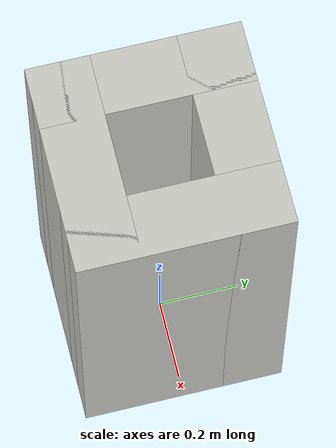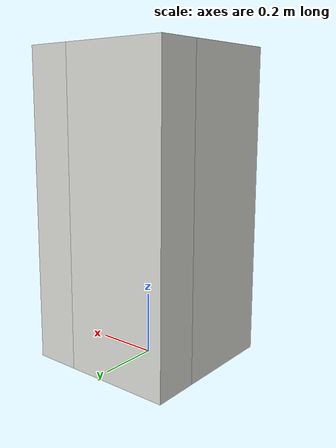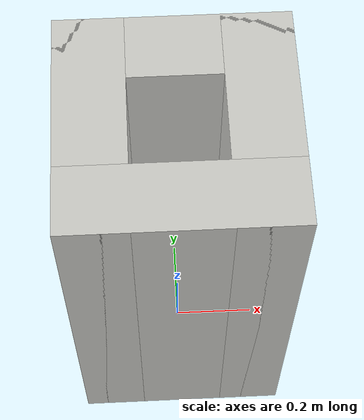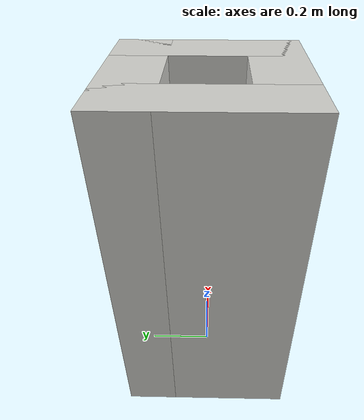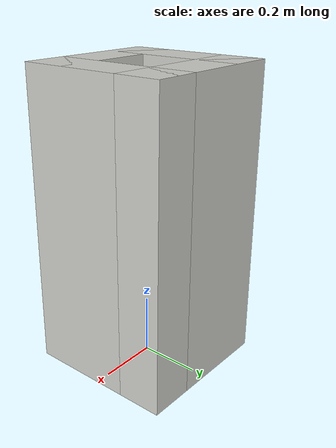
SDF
<?xml version='1.0'?>
<sdf version='1.6'>
  <model name='obstacle_squarepillar_medium'>
    <static>1</static>
    <pose frame=''>0 0 0 0 -0 0</pose>
    <link name='Wall_1'>
      <collision name='Wall_1_Collision'>
        <geometry>
          <box>
            <size>0.5 0.15 1.0</size>
          </box>
        </geometry>
        <pose frame=''>0 0 0.5 0 -0 0</pose>
      </collision>
      <visual name='Wall_1_Visual'>
        <pose frame=''>0 0 0.5 0 -0 0</pose>
        <geometry>
          <box>
            <size>0.5 0.15 1.0</size>
          </box>
        </geometry>
        <material>
          <script>
            <uri>file://media/materials/scripts/gazebo.material</uri>
            <name>Gazebo/CeilingTiled</name>
          </script>
          <ambient>1 0.764706 0.305882 1</ambient>
        </material>
      </visual>
      <pose frame=''>-0.175 0 0 0 0 -1.5708</pose>
    </link>
    <link name='Wall_2'>
      <collision name='Wall_2_Collision'>
        <geometry>
          <box>
            <size>0.5 0.15 1.0</size>
          </box>
        </geometry>
        <pose frame=''>0 0 0.5 0 -0 0</pose>
      </collision>
      <visual name='Wall_2_Visual'>
        <pose frame=''>0 0 0.5 0 -0 0</pose>
        <geometry>
          <box>
            <size>0.5 0.15 1.0</size>
          </box>
        </geometry>
        <material>
          <script>
            <uri>file://media/materials/scripts/gazebo.material</uri>
            <name>Gazebo/CeilingTiled</name>
          </script>
          <ambient>1 0.764706 0.305882 1</ambient>
        </material>
      </visual>
      <pose frame=''>0 -0.175 0 0 -0 0</pose>
    </link>
    <link name='Wall_3'>
      <collision name='Wall_3_Collision'>
        <geometry>
          <box>
            <size>0.5 0.15 1.0</size>
          </box>
        </geometry>
        <pose frame=''>0 0 0.5 0 -0 0</pose>
      </collision>
      <visual name='Wall_3_Visual'>
        <pose frame=''>0 0 0.5 0 -0 0</pose>
        <geometry>
          <box>
            <size>0.5 0.15 1.0</size>
          </box>
        </geometry>
        <material>
          <script>
            <uri>file://media/materials/scripts/gazebo.material</uri>
            <name>Gazebo/CeilingTiled</name>
          </script>
          <ambient>1 0.764706 0.305882 1</ambient>
        </material>
      </visual>
      <pose frame=''>0.175 0 0 0 -0 1.5708</pose>
    </link>
    <link name='Wall_4'>
      <collision name='Wall_4_Collision'>
        <geometry>
          <box>
            <size>0.5 0.15 1.0</size>
          </box>
        </geometry>
        <pose frame=''>0 0 0.5 0 -0 0</pose>
      </collision>
      <visual name='Wall_4_Visual'>
        <pose frame=''>0 0 0.5 0 -0 0</pose>
        <geometry>
          <box>
            <size>0.5 0.15 1.0</size>
          </box>
        </geometry>
        <material>
          <script>
            <uri>file://media/materials/scripts/gazebo.material</uri>
            <name>Gazebo/CeilingTiled</name>
          </script>
          <ambient>1 0.764706 0.305882 1</ambient>
        </material>
      </visual>
      <pose frame=''>0 0.175 0 0 -0 3.14159</pose>
    </link>
  </model>
</sdf>
